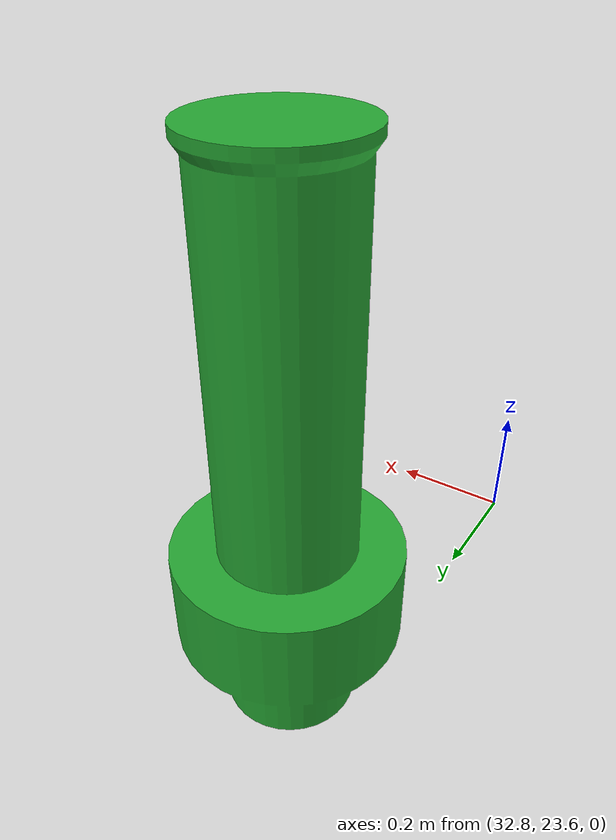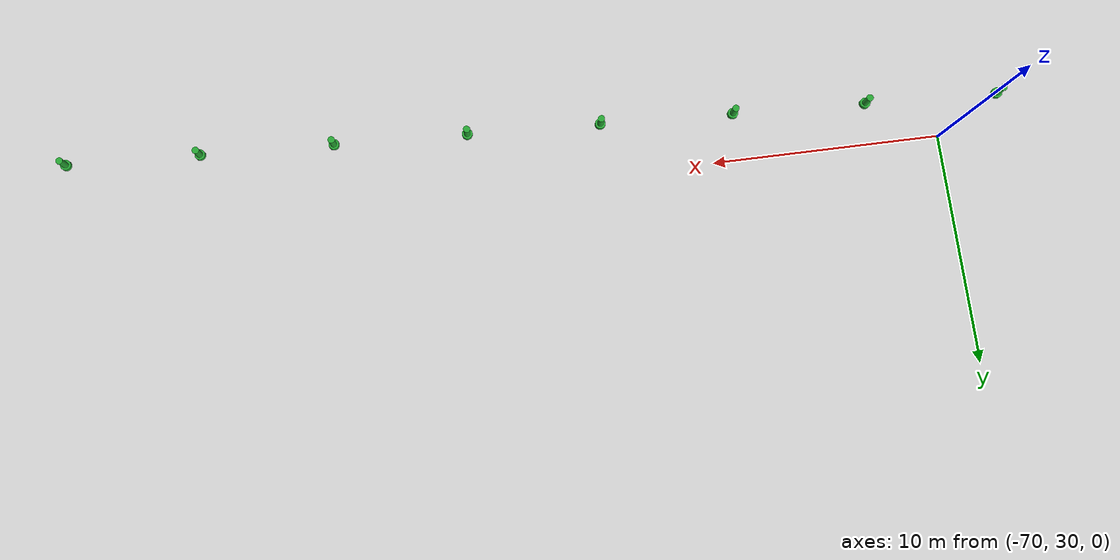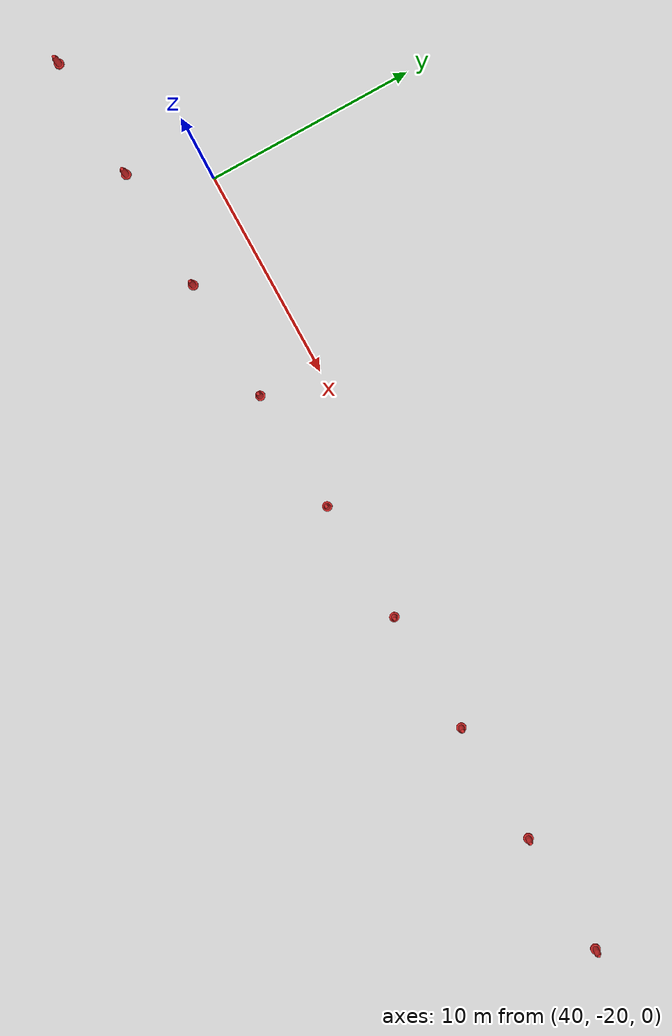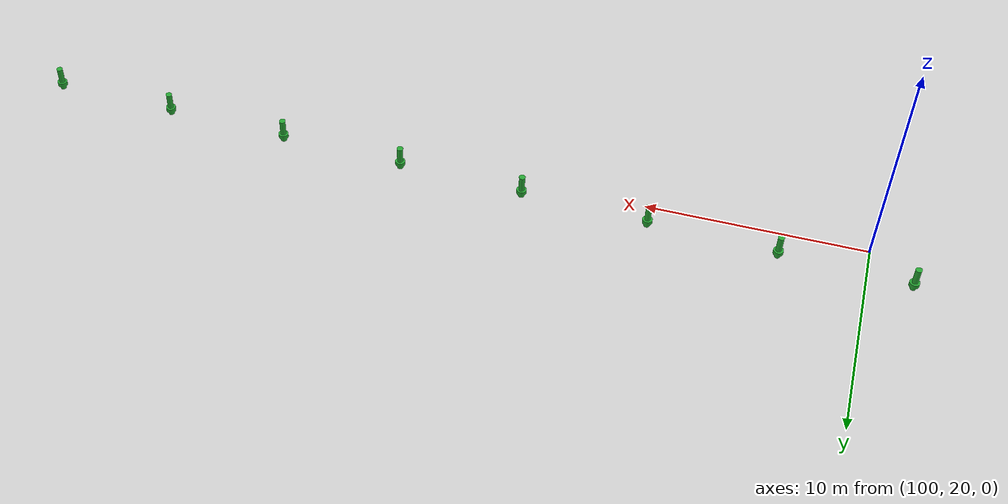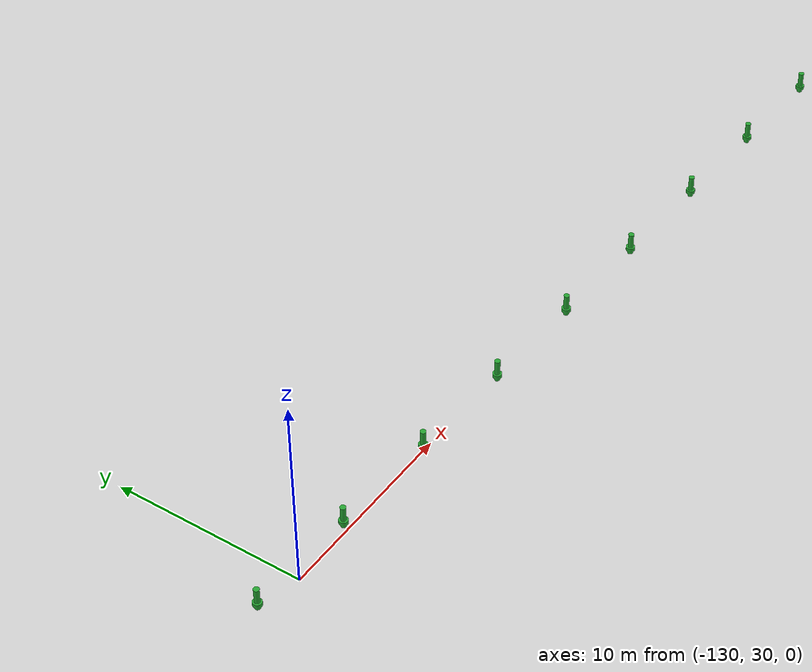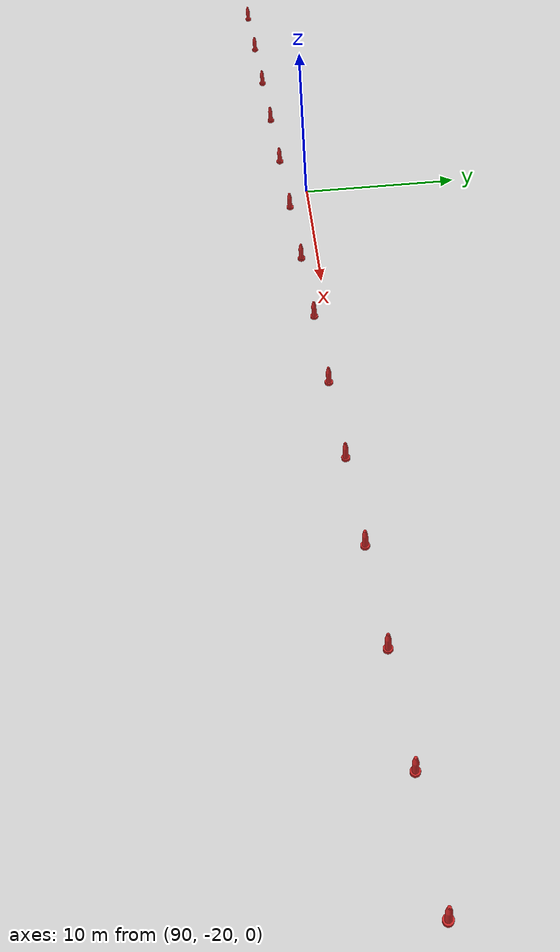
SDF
<?xml version="1.0"?>
<sdf version="1.6">
  <model name="dynamic_channel_extension">
    <include>
      <name>red_extension_entrance</name>
      <pose>-145.541570 -31.020579 0.000000 0 0 0</pose>
      <uri>model://surmark950410</uri>
    </include>
    <include>
      <name>red_extension_dense_001</name>
      <pose>-139.628070 -30.775570 0.000000 0 0 0</pose>
      <uri>model://surmark950410</uri>
    </include>
    <include>
      <name>red_extension_dense_002</name>
      <pose>-133.714570 -30.530562 0.000000 0 0 0</pose>
      <uri>model://surmark950410</uri>
    </include>
    <include>
      <name>red_extension_dense_003</name>
      <pose>-127.801070 -30.285553 0.000000 0 0 0</pose>
      <uri>model://surmark950410</uri>
    </include>
    <include>
      <name>red_extension_dense_004</name>
      <pose>-121.887569 -30.040544 0.000000 0 0 0</pose>
      <uri>model://surmark950410</uri>
    </include>
    <include>
      <name>red_extension_dense_005</name>
      <pose>-115.974069 -29.795536 0.000000 0 0 0</pose>
      <uri>model://surmark950410</uri>
    </include>
    <include>
      <name>red_extension_dense_006</name>
      <pose>-110.060569 -29.550527 0.000000 0 0 0</pose>
      <uri>model://surmark950410</uri>
    </include>
    <include>
      <name>red_extension_dense_007</name>
      <pose>-104.147069 -29.305518 0.000000 0 0 0</pose>
      <uri>model://surmark950410</uri>
    </include>
    <include>
      <name>red_extension_dense_008</name>
      <pose>-98.233569 -29.060510 0.000000 0 0 0</pose>
      <uri>model://surmark950410</uri>
    </include>
    <include>
      <name>red_extension_dense_009</name>
      <pose>-92.320068 -28.815501 0.000000 0 0 0</pose>
      <uri>model://surmark950410</uri>
    </include>
    <include>
      <name>red_extension_dense_010</name>
      <pose>-86.406568 -28.570492 0.000000 0 0 0</pose>
      <uri>model://surmark950410</uri>
    </include>
    <include>
      <name>red_extension_dense_011</name>
      <pose>-80.493068 -28.325483 0.000000 0 0 0</pose>
      <uri>model://surmark950410</uri>
    </include>
    <include>
      <name>red_extension_dense_012</name>
      <pose>-74.579568 -28.080475 0.000000 0 0 0</pose>
      <uri>model://surmark950410</uri>
    </include>
    <include>
      <name>red_extension_dense_013</name>
      <pose>-68.666068 -27.835466 0.000000 0 0 0</pose>
      <uri>model://surmark950410</uri>
    </include>
    <include>
      <name>red_extension_dense_014</name>
      <pose>-62.752567 -27.590457 0.000000 0 0 0</pose>
      <uri>model://surmark950410</uri>
    </include>
    <include>
      <name>red_extension_dense_015</name>
      <pose>-56.839067 -27.345449 0.000000 0 0 0</pose>
      <uri>model://surmark950410</uri>
    </include>
    <include>
      <name>red_extension_dense_016</name>
      <pose>-50.925567 -27.100440 0.000000 0 0 0</pose>
      <uri>model://surmark950410</uri>
    </include>
    <include>
      <name>red_extension_dense_017</name>
      <pose>-45.012067 -26.855431 0.000000 0 0 0</pose>
      <uri>model://surmark950410</uri>
    </include>
    <include>
      <name>red_extension_dense_018</name>
      <pose>-39.098567 -26.610423 0.000000 0 0 0</pose>
      <uri>model://surmark950410</uri>
    </include>
    <include>
      <name>red_extension_dense_019</name>
      <pose>-33.185066 -26.365414 0.000000 0 0 0</pose>
      <uri>model://surmark950410</uri>
    </include>
    <include>
      <name>red_extension_dense_020</name>
      <pose>-27.271566 -26.120405 0.000000 0 0 0</pose>
      <uri>model://surmark950410</uri>
    </include>
    <include>
      <name>red_extension_dense_021</name>
      <pose>-21.358066 -25.875396 0.000000 0 0 0</pose>
      <uri>model://surmark950410</uri>
    </include>
    <include>
      <name>red_extension_dense_022</name>
      <pose>-15.444566 -25.630388 0.000000 0 0 0</pose>
      <uri>model://surmark950410</uri>
    </include>
    <include>
      <name>red_extension_dense_023</name>
      <pose>-9.531066 -25.385379 0.000000 0 0 0</pose>
      <uri>model://surmark950410</uri>
    </include>
    <include>
      <name>red_extension_2</name>
      <pose>-3.617565 -25.140370 0.000000 0 0 0</pose>
      <uri>model://surmark950410</uri>
    </include>
    <include>
      <name>red_extension_dense_024</name>
      <pose>2.295935 -24.895362 0.000000 0 0 0</pose>
      <uri>model://surmark950410</uri>
    </include>
    <include>
      <name>red_extension_dense_025</name>
      <pose>8.209435 -24.650353 0.000000 0 0 0</pose>
      <uri>model://surmark950410</uri>
    </include>
    <include>
      <name>red_extension_dense_026</name>
      <pose>14.122935 -24.405344 0.000000 0 0 0</pose>
      <uri>model://surmark950410</uri>
    </include>
    <include>
      <name>red_extension_dense_027</name>
      <pose>20.036435 -24.160336 0.000000 0 0 0</pose>
      <uri>model://surmark950410</uri>
    </include>
    <include>
      <name>red_extension_dense_028</name>
      <pose>25.949936 -23.915327 0.000000 0 0 0</pose>
      <uri>model://surmark950410</uri>
    </include>
    <include>
      <name>red_extension_dense_029</name>
      <pose>31.863436 -23.670318 0.000000 0 0 0</pose>
      <uri>model://surmark950410</uri>
    </include>
    <include>
      <name>red_extension_dense_030</name>
      <pose>37.776936 -23.425309 0.000000 0 0 0</pose>
      <uri>model://surmark950410</uri>
    </include>
    <include>
      <name>red_extension_dense_031</name>
      <pose>43.690436 -23.180301 0.000000 0 0 0</pose>
      <uri>model://surmark950410</uri>
    </include>
    <include>
      <name>red_extension_dense_032</name>
      <pose>49.603936 -22.935292 0.000000 0 0 0</pose>
      <uri>model://surmark950410</uri>
    </include>
    <include>
      <name>red_extension_dense_033</name>
      <pose>55.517437 -22.690283 0.000000 0 0 0</pose>
      <uri>model://surmark950410</uri>
    </include>
    <include>
      <name>red_extension_dense_034</name>
      <pose>61.430937 -22.445275 0.000000 0 0 0</pose>
      <uri>model://surmark950410</uri>
    </include>
    <include>
      <name>red_extension_dense_035</name>
      <pose>67.344437 -22.200266 0.000000 0 0 0</pose>
      <uri>model://surmark950410</uri>
    </include>
    <include>
      <name>red_extension_dense_036</name>
      <pose>73.257937 -21.955257 0.000000 0 0 0</pose>
      <uri>model://surmark950410</uri>
    </include>
    <include>
      <name>red_extension_dense_037</name>
      <pose>79.171437 -21.710249 0.000000 0 0 0</pose>
      <uri>model://surmark950410</uri>
    </include>
    <include>
      <name>red_extension_dense_038</name>
      <pose>85.084938 -21.465240 0.000000 0 0 0</pose>
      <uri>model://surmark950410</uri>
    </include>
    <include>
      <name>red_extension_dense_039</name>
      <pose>90.998438 -21.220231 0.000000 0 0 0</pose>
      <uri>model://surmark950410</uri>
    </include>
    <include>
      <name>red_extension_dense_040</name>
      <pose>96.911938 -20.975222 0.000000 0 0 0</pose>
      <uri>model://surmark950410</uri>
    </include>
    <include>
      <name>red_extension_dense_041</name>
      <pose>102.825438 -20.730214 0.000000 0 0 0</pose>
      <uri>model://surmark950410</uri>
    </include>
    <include>
      <name>red_extension_dense_042</name>
      <pose>108.738938 -20.485205 0.000000 0 0 0</pose>
      <uri>model://surmark950410</uri>
    </include>
    <include>
      <name>red_extension_dense_043</name>
      <pose>114.652439 -20.240196 0.000000 0 0 0</pose>
      <uri>model://surmark950410</uri>
    </include>
    <include>
      <name>red_extension_dense_044</name>
      <pose>120.565939 -19.995188 0.000000 0 0 0</pose>
      <uri>model://surmark950410</uri>
    </include>
    <include>
      <name>red_extension_dense_045</name>
      <pose>126.479439 -19.750179 0.000000 0 0 0</pose>
      <uri>model://surmark950410</uri>
    </include>
    <include>
      <name>red_extension_dense_046</name>
      <pose>132.392939 -19.505170 0.000000 0 0 0</pose>
      <uri>model://surmark950410</uri>
    </include>
    <include>
      <name>red_extension_exit</name>
      <pose>138.306439 -19.260162 0.000000 0 0 0</pose>
      <uri>model://surmark950410</uri>
    </include>
    <include>
      <name>green_extension_entrance</name>
      <pose>-137.867145 31.020562 0.200000 0 0 0</pose>
      <uri>model://surmark950400</uri>
    </include>
    <include>
      <name>green_extension_dense_001</name>
      <pose>-131.971949 30.775554 0.200000 0 0 0</pose>
      <uri>model://surmark950400</uri>
    </include>
    <include>
      <name>green_extension_dense_002</name>
      <pose>-126.076753 30.530546 0.200000 0 0 0</pose>
      <uri>model://surmark950400</uri>
    </include>
    <include>
      <name>green_extension_dense_003</name>
      <pose>-120.181556 30.285538 0.200000 0 0 0</pose>
      <uri>model://surmark950400</uri>
    </include>
    <include>
      <name>green_extension_dense_004</name>
      <pose>-114.286360 30.040530 0.200000 0 0 0</pose>
      <uri>model://surmark950400</uri>
    </include>
    <include>
      <name>green_extension_dense_005</name>
      <pose>-108.391164 29.795522 0.200000 0 0 0</pose>
      <uri>model://surmark950400</uri>
    </include>
    <include>
      <name>green_extension_dense_006</name>
      <pose>-102.495968 29.550514 0.200000 0 0 0</pose>
      <uri>model://surmark950400</uri>
    </include>
    <include>
      <name>green_extension_dense_007</name>
      <pose>-96.600771 29.305506 0.200000 0 0 0</pose>
      <uri>model://surmark950400</uri>
    </include>
    <include>
      <name>green_extension_dense_008</name>
      <pose>-90.705575 29.060498 0.200000 0 0 0</pose>
      <uri>model://surmark950400</uri>
    </include>
    <include>
      <name>green_extension_dense_009</name>
      <pose>-84.810379 28.815490 0.200000 0 0 0</pose>
      <uri>model://surmark950400</uri>
    </include>
    <include>
      <name>green_extension_dense_010</name>
      <pose>-78.915182 28.570482 0.200000 0 0 0</pose>
      <uri>model://surmark950400</uri>
    </include>
    <include>
      <name>green_extension_dense_011</name>
      <pose>-73.019986 28.325474 0.200000 0 0 0</pose>
      <uri>model://surmark950400</uri>
    </include>
    <include>
      <name>green_extension_dense_012</name>
      <pose>-67.124790 28.080466 0.200000 0 0 0</pose>
      <uri>model://surmark950400</uri>
    </include>
    <include>
      <name>green_extension_dense_013</name>
      <pose>-61.229594 27.835458 0.200000 0 0 0</pose>
      <uri>model://surmark950400</uri>
    </include>
    <include>
      <name>green_extension_dense_014</name>
      <pose>-55.334397 27.590450 0.200000 0 0 0</pose>
      <uri>model://surmark950400</uri>
    </include>
    <include>
      <name>green_extension_dense_015</name>
      <pose>-49.439201 27.345442 0.200000 0 0 0</pose>
      <uri>model://surmark950400</uri>
    </include>
    <include>
      <name>green_extension_dense_016</name>
      <pose>-43.544005 27.100434 0.200000 0 0 0</pose>
      <uri>model://surmark950400</uri>
    </include>
    <include>
      <name>green_extension_dense_017</name>
      <pose>-37.648809 26.855426 0.200000 0 0 0</pose>
      <uri>model://surmark950400</uri>
    </include>
    <include>
      <name>green_extension_dense_018</name>
      <pose>-31.753612 26.610418 0.200000 0 0 0</pose>
      <uri>model://surmark950400</uri>
    </include>
    <include>
      <name>green_extension_dense_019</name>
      <pose>-25.858416 26.365410 0.200000 0 0 0</pose>
      <uri>model://surmark950400</uri>
    </include>
    <include>
      <name>green_extension_dense_020</name>
      <pose>-19.963220 26.120402 0.200000 0 0 0</pose>
      <uri>model://surmark950400</uri>
    </include>
    <include>
      <name>green_extension_dense_021</name>
      <pose>-14.068023 25.875394 0.200000 0 0 0</pose>
      <uri>model://surmark950400</uri>
    </include>
    <include>
      <name>green_extension_dense_022</name>
      <pose>-8.172827 25.630386 0.200000 0 0 0</pose>
      <uri>model://surmark950400</uri>
    </include>
    <include>
      <name>green_extension_dense_023</name>
      <pose>-2.277631 25.385378 0.200000 0 0 0</pose>
      <uri>model://surmark950400</uri>
    </include>
    <include>
      <name>green_extension_2</name>
      <pose>3.617565 25.140370 0.200000 0 0 0</pose>
      <uri>model://surmark950400</uri>
    </include>
    <include>
      <name>green_extension_dense_024</name>
      <pose>9.512762 24.895362 0.200000 0 0 0</pose>
      <uri>model://surmark950400</uri>
    </include>
    <include>
      <name>green_extension_dense_025</name>
      <pose>15.407958 24.650354 0.200000 0 0 0</pose>
      <uri>model://surmark950400</uri>
    </include>
    <include>
      <name>green_extension_dense_026</name>
      <pose>21.303154 24.405346 0.200000 0 0 0</pose>
      <uri>model://surmark950400</uri>
    </include>
    <include>
      <name>green_extension_dense_027</name>
      <pose>27.198351 24.160338 0.200000 0 0 0</pose>
      <uri>model://surmark950400</uri>
    </include>
    <include>
      <name>green_extension_dense_028</name>
      <pose>33.093547 23.915330 0.200000 0 0 0</pose>
      <uri>model://surmark950400</uri>
    </include>
    <include>
      <name>green_extension_dense_029</name>
      <pose>38.988743 23.670322 0.200000 0 0 0</pose>
      <uri>model://surmark950400</uri>
    </include>
    <include>
      <name>green_extension_dense_030</name>
      <pose>44.883939 23.425314 0.200000 0 0 0</pose>
      <uri>model://surmark950400</uri>
    </include>
    <include>
      <name>green_extension_dense_031</name>
      <pose>50.779136 23.180306 0.200000 0 0 0</pose>
      <uri>model://surmark950400</uri>
    </include>
    <include>
      <name>green_extension_dense_032</name>
      <pose>56.674332 22.935298 0.200000 0 0 0</pose>
      <uri>model://surmark950400</uri>
    </include>
    <include>
      <name>green_extension_dense_033</name>
      <pose>62.569528 22.690290 0.200000 0 0 0</pose>
      <uri>model://surmark950400</uri>
    </include>
    <include>
      <name>green_extension_dense_034</name>
      <pose>68.464724 22.445282 0.200000 0 0 0</pose>
      <uri>model://surmark950400</uri>
    </include>
    <include>
      <name>green_extension_dense_035</name>
      <pose>74.359921 22.200274 0.200000 0 0 0</pose>
      <uri>model://surmark950400</uri>
    </include>
    <include>
      <name>green_extension_dense_036</name>
      <pose>80.255117 21.955266 0.200000 0 0 0</pose>
      <uri>model://surmark950400</uri>
    </include>
    <include>
      <name>green_extension_dense_037</name>
      <pose>86.150313 21.710258 0.200000 0 0 0</pose>
      <uri>model://surmark950400</uri>
    </include>
    <include>
      <name>green_extension_dense_038</name>
      <pose>92.045510 21.465250 0.200000 0 0 0</pose>
      <uri>model://surmark950400</uri>
    </include>
    <include>
      <name>green_extension_dense_039</name>
      <pose>97.940706 21.220243 0.200000 0 0 0</pose>
      <uri>model://surmark950400</uri>
    </include>
    <include>
      <name>green_extension_dense_040</name>
      <pose>103.835902 20.975235 0.200000 0 0 0</pose>
      <uri>model://surmark950400</uri>
    </include>
    <include>
      <name>green_extension_dense_041</name>
      <pose>109.731098 20.730227 0.200000 0 0 0</pose>
      <uri>model://surmark950400</uri>
    </include>
    <include>
      <name>green_extension_dense_042</name>
      <pose>115.626295 20.485219 0.200000 0 0 0</pose>
      <uri>model://surmark950400</uri>
    </include>
    <include>
      <name>green_extension_dense_043</name>
      <pose>121.521491 20.240211 0.200000 0 0 0</pose>
      <uri>model://surmark950400</uri>
    </include>
    <include>
      <name>green_extension_dense_044</name>
      <pose>127.416687 19.995203 0.200000 0 0 0</pose>
      <uri>model://surmark950400</uri>
    </include>
    <include>
      <name>green_extension_dense_045</name>
      <pose>133.311884 19.750195 0.200000 0 0 0</pose>
      <uri>model://surmark950400</uri>
    </include>
    <include>
      <name>green_extension_dense_046</name>
      <pose>139.207080 19.505187 0.200000 0 0 0</pose>
      <uri>model://surmark950400</uri>
    </include>
    <include>
      <name>green_extension_exit</name>
      <pose>145.102276 19.260179 0.200000 0 0 0</pose>
      <uri>model://surmark950400</uri>
    </include>
  </model>
</sdf>

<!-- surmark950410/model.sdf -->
<sdf version="1.6">
  <model name="surmark950410">
    <link name="link">
      <inertial>
        <pose>0 0 -2 0 0 0</pose>
        <!-- Mass determined based on buoyancy geometry so object
             floats at mid-point of sphere -->
        <mass>25</mass>
        <!-- Mark only - based on cylinder -->
        <inertia>
          <ixx>1.0</ixx>
          <ixy>0</ixy>
          <ixz>0</ixz>
          <iyy>1.0</iyy>
          <iyz>0</iyz>
          <izz>0.1</izz>
        </inertia>
      </inertial>
      <collision name="collision_inner">
        <pose>0 0 -0.01 0 0 0</pose>
        <geometry>
          <cylinder>
            <radius>0.15</radius>
            <length>1.26</length>
          </cylinder>
        </geometry>
      </collision>
      <collision name="collision_outer">
        <pose>0 0 -0.48 0 0 0</pose>
        <geometry>
          <cylinder>
            <radius>0.24</radius>
            <length>0.15</length>
          </cylinder>
        </geometry>
      </collision>
      <visual name="visual">
        <geometry>
	        <mesh><uri>model://surmark950410/mesh/surmark950410.dae</uri></mesh>
        </geometry>
        <material>
          <script>
            <uri>model://surmark950410/materials/scripts/surmark950410.material</uri>
            <name>surmark950410/Red</name>
          </script>
        </material>
      </visual>
    </link>

    <plugin name="BuoyancyPlugin" filename="libbuoyancy_gazebo_plugin.so">
      <wave_model>ocean_waves</wave_model>
      <fluid_density>1000</fluid_density>
      <fluid_level>0.0</fluid_level>
      <linear_drag>25.0</linear_drag>
      <angular_drag>2.0</angular_drag>
      <buoyancy name="buoyancy_sphere">
        <link_name>link</link_name>
        <pose>0 0 -0.48 0 0 0</pose>
        <geometry>
          <sphere>
            <radius>0.23</radius>
          </sphere>
        </geometry>
      </buoyancy>
    </plugin>

  </model>
</sdf>

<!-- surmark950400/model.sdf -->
<sdf version="1.6">
  <model name="surmark950400">
    <link name="link">
      <inertial>
        <pose>0 0 -2 0 0 0</pose>
        <!-- Mass determined based on buoyancy geometry so object
             floats at mid-point of sphere -->
        <mass>25</mass>
        <!-- Mark only - based on cylinder -->
        <inertia>
          <ixx>1.0</ixx>
          <ixy>0</ixy>
          <ixz>0</ixz>
          <iyy>1.0</iyy>
          <iyz>0</iyz>
          <izz>0.1</izz>
        </inertia>
      </inertial>
      <collision name="collision_inner">
        <pose>0 0 -0.02 0 0 0</pose>
        <geometry>
          <cylinder>
            <radius>0.15</radius>
            <length>1.18</length>
          </cylinder>
        </geometry>
      </collision>
      <collision name="collision_outer">
        <pose>0 0 -0.31 0 0 0</pose>
        <geometry>
          <cylinder>
            <radius>0.24</radius>
            <length>0.2</length>
          </cylinder>
        </geometry>
      </collision>
      <visual name="visual">
        <geometry>
	        <mesh><uri>model://surmark950400/mesh/surmark950400.dae</uri></mesh>
        </geometry>
        <material>
          <script>
            <uri>model://surmark950400/materials/scripts/surmark950400.material</uri>
            <name>surmark950400/Green</name>
          </script>
        </material>
      </visual>
    </link>

    <plugin name="BuoyancyPlugin" filename="libbuoyancy_gazebo_plugin.so">
      <wave_model>ocean_waves</wave_model>
      <fluid_density>1000</fluid_density>
      <fluid_level>0.0</fluid_level>
      <linear_drag>25.0</linear_drag>
      <angular_drag>2.0</angular_drag>
      <buoyancy name="buoyancy_sphere">
        <link_name>link</link_name>
        <pose>0 0 -0.31 0 0 0</pose>
        <geometry>
          <sphere>
            <radius>0.23</radius>
          </sphere>
        </geometry>
      </buoyancy>
    </plugin>

  </model>
</sdf>
